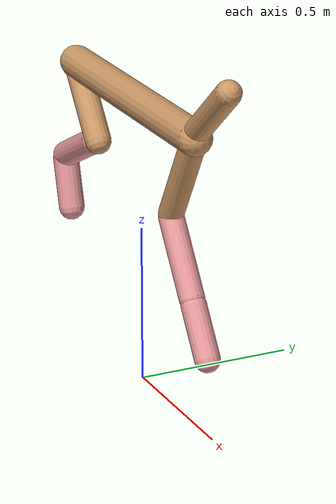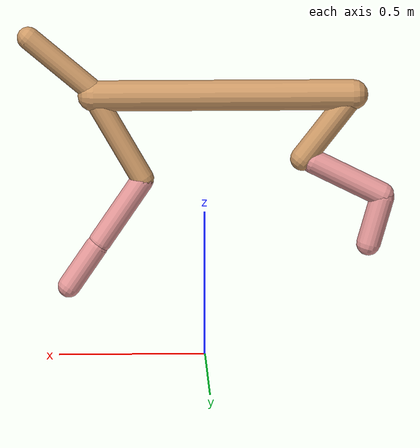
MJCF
<mujoco model="cheetah">
  <compiler angle="radian" coordinate="local" inertiafromgeom="true" settotalmass="14" />
  <default>
    <joint armature=".1" damping=".01" limited="true" solimplimit="0 .8 .03" solreflimit=".02 1" stiffness="8" />
    <geom conaffinity="0" condim="3" contype="1" friction="0.8 .1 .1" rgba="0.8 0.6 .4 1" solimp="0.0 0.8 0.01" solref="0.02 1" />
    <motor ctrllimited="true" ctrlrange="-1 1" />
  </default>
  <size nstack="300000" nuser_geom="1" />
  <option gravity="0 0 -9.81" timestep="0.01" />
  <worldbody>
    <body name="torso" pos="0.0 0.0 0.9005903456288737">
      <joint armature="0" axis="1 0 0" damping="0" limited="false" name="ignorex" pos="0 0 0" stiffness="0" type="slide" />
      <joint armature="0" axis="0 0 1" damping="0" limited="false" name="ignorez" pos="0 0 0" stiffness="0" type="slide" />
      <joint armature="0" axis="0 1 0" damping="0" limited="false" name="ignorey" pos="0 0 0" stiffness="0" type="hinge" />
      <geom fromto="-0.5 0.0 0.0 0.3745366347974861 0.0 0.0" name="torso" size="0.05252072618133782" type="capsule" />
      <geom axisangle="0 1 0 .87" name="head" pos="0.4745366347974861 0.0 0.1" size="0.038665254938109975 0.15" type="capsule" />

      <body name="bthigh" pos="-.5 0 0">
        <joint axis="0 1 0" damping="6" name="bthigh" pos="0 0 0" range="-.52 1.05" stiffness="240" type="hinge" />
        <geom axisangle="0 1 0 -3.8" name="bthigh" pos="0.08972522457441116 0.0 -0.1166427919467345" size="0.041942858248187775 0.12814811532722512" type="capsule" />
        <body name="bshin" pos="0.13945044914882232 0.0 -0.223285583893469">
          <joint axis="0 1 0" damping="4.5" name="bshin" pos="0 0 0" range="-.785 .785" stiffness="180" type="hinge" />
          <geom axisangle="0 1 0 -2.03" name="bshin" pos="-0.12440746496111252 0.0 -0.06220373248055626" rgba="0.9 0.6 0.6 1" size="0.041942858248187775 0.13256701585575012" type="capsule" />
          <body name="bfoot" pos="-0.24881492992222504 0.0 -0.12440746496111252">
            <joint axis="0 1 0" damping="3" name="bfoot" pos="0 0 0" range="-.4 .785" stiffness="120" type="hinge" />
            <geom axisangle="0 1 0 -.27" name="bfoot" pos="0.02677209076325471 0.0 -0.0865630934678569" rgba="0.9 0.6 0.6 1" size="0.041942858248187775 0.08307532993627008" type="capsule" />
            <inertial mass="10" />
          </body>
        </body>
      </body>
      <body name="fthigh" pos="0.3745366347974861 0.0 0.0">
        <joint axis="0 1 0" damping="4.5" name="fthigh" pos="0 0 0" range="-1.5 0.8" stiffness="180" type="hinge" />
        <geom axisangle="0 1 0 .52" name="fthigh" pos="-0.08406122510520864 0.0 -0.1441049573232148" size="0.03919023993056642 0.16090639745673663" type="capsule" />
        <body name="fshin" pos="-0.16812245021041727 0.0 -0.2882099146464296">
          <joint axis="0 1 0" damping="3" name="fshin" pos="0 0 0" range="-1.2 1.1" stiffness="120" type="hinge" />
          <geom axisangle="0 1 0 -.6" name="fshin" pos="0.07802200603677463 0.0 -0.10803046989707256" rgba="0.9 0.6 0.6 1" size="0.03919023993056642 0.1282411889504818" type="capsule" />
          <body name="ffoot" pos="0.15604401207354926 0.0 -0.21606093979414512">
            <joint axis="0 1 0" damping="1.5" name="ffoot" pos="0 0 0" range="-3.1 -0.3" stiffness="60" type="hinge" />
            <geom axisangle="0 1 0 -.6" name="ffoot" pos="0.052942419089969495 0.0 -0.08235487413995256" rgba="0.9 0.6 0.6 1" size="0.03919023993056642 0.08468757760880875" type="capsule" />
            <inertial mass="10" />
          </body>
        </body>
      </body>
    </body>
  </worldbody>
  <actuator>
    <motor gear="120" joint="bthigh" name="bthigh" />
    <motor gear="90" joint="bshin" name="bshin" />
    <motor gear="60" joint="bfoot" name="bfoot" />
    <motor gear="120" joint="fthigh" name="fthigh" />
    <motor gear="60" joint="fshin" name="fshin" />
    <motor gear="30" joint="ffoot" name="ffoot" />
  </actuator>
</mujoco>
